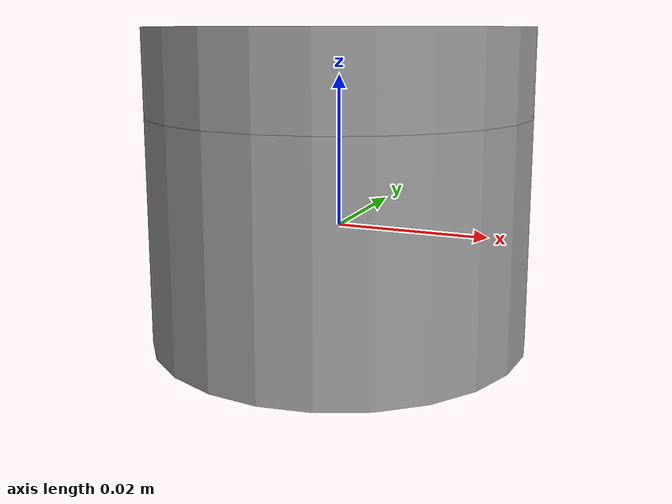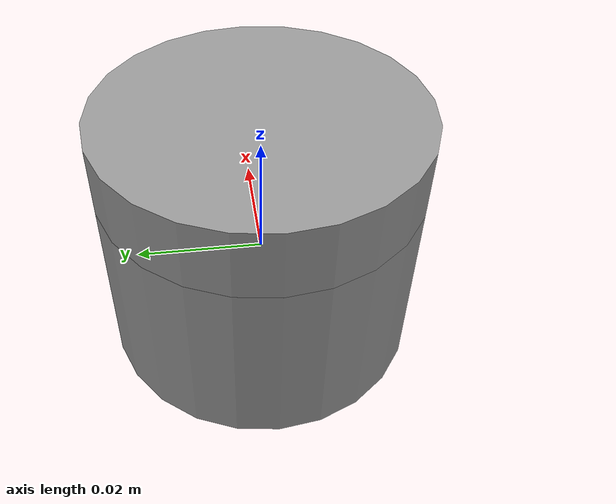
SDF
<?xml version='1.0'?>
<sdf version='1.6'>
  <model name='round_bottle'>
    <link name='link'>
      <inertial>
        <mass>0.01</mass>
        <inertia>
          <ixx>0.145833</ixx>
          <ixy>0</ixy>
          <ixz>0</ixz>
          <iyy>0.145833</iyy>
          <iyz>0</iyz>
          <izz>0.125</izz>
        </inertia>
        <pose frame=''>0 0 0 0 -0 0</pose>
      </inertial>
      <self_collide>0</self_collide>
      <enable_wind>0</enable_wind>
      <kinematic>0</kinematic>
      <pose frame=''>0 0 0 0 -0 0</pose>
      <gravity>1</gravity>
      <visual name='visual'>
        <geometry>
          <cylinder>
            <radius>0.025</radius>
            <length>0.03</length>
          </cylinder>
        </geometry>
        <material>
          <script>
            <name>Gazebo/Grey</name>
            <uri>file://media/materials/scripts/gazebo.material</uri>
          </script>
          <shader type='vertex'>
            <normal_map>__default__</normal_map>
          </shader>
          <ambient>0.1 0.1 0.1 0.1</ambient>
          <diffuse>0.1 0.1 0.1 0.1</diffuse>
          <specular>0.1 0.1 0.1 0.1</specular>
          <emissive>0.1 0.1 0.1 0.1</emissive>
        </material>
        <pose frame=''>0 0 0 0 -0 0</pose>
        <transparency>0</transparency>
        <cast_shadows>1</cast_shadows>
      </visual>
      <collision name='collision'>
        <laser_retro>0</laser_retro>
        <max_contacts>10</max_contacts>
        <pose frame=''>0 0 0 0 -0 0</pose>
        <geometry>
          <cylinder>
            <radius>0.025</radius>
            <length>0.03</length>
          </cylinder>
        </geometry>
        <surface>
          <friction>
            <ode>
              <mu>1</mu>
              <mu2>1</mu2>
              <fdir1>0 0 0</fdir1>
              <slip1>0</slip1>
              <slip2>0</slip2>
            </ode>
            <torsional>
              <coefficient>1</coefficient>
              <patch_radius>0</patch_radius>
              <surface_radius>0</surface_radius>
              <use_patch_radius>1</use_patch_radius>
              <ode>
                <slip>0</slip>
              </ode>
            </torsional>
          </friction>
          <bounce>
            <restitution_coefficient>0</restitution_coefficient>
            <threshold>1e+06</threshold>
          </bounce>
          <contact>
            <collide_without_contact>0</collide_without_contact>
            <collide_without_contact_bitmask>1</collide_without_contact_bitmask>
            <collide_bitmask>1</collide_bitmask>
            <ode>
              <soft_cfm>0</soft_cfm>
              <soft_erp>0.2</soft_erp>
              <kp>1e+13</kp>
              <kd>1</kd>
              <max_vel>0.01</max_vel>
              <min_depth>0</min_depth>
            </ode>
            <bullet>
              <split_impulse>1</split_impulse>
              <split_impulse_penetration_threshold>-0.01</split_impulse_penetration_threshold>
              <soft_cfm>0</soft_cfm>
              <soft_erp>0.2</soft_erp>
              <kp>1e+13</kp>
              <kd>1</kd>
            </bullet>
          </contact>
        </surface>
      </collision>
    </link>
    <link name='link_clone'>
      <inertial>
        <mass>0.01</mass>
        <inertia>
          <ixx>0.145833</ixx>
          <ixy>0</ixy>
          <ixz>0</ixz>
          <iyy>0.145833</iyy>
          <iyz>0</iyz>
          <izz>0.125</izz>
        </inertia>
        <pose frame=''>0 0 0 0 -0 0</pose>
      </inertial>
      <self_collide>0</self_collide>
      <enable_wind>0</enable_wind>
      <kinematic>0</kinematic>
      <pose frame=''>-0 0 0.0205 0 -0 0</pose>
      <gravity>1</gravity>
      <visual name='visual'>
        <geometry>
          <cylinder>
            <radius>0.025</radius>
            <length>0.011</length>
          </cylinder>
        </geometry>
        <material>
          <script>
            <name>Gazebo/Grey</name>
            <uri>file://media/materials/scripts/gazebo.material</uri>
          </script>
          <shader type='vertex'>
            <normal_map>__default__</normal_map>
          </shader>
          <ambient>0 0 0 1</ambient>
          <diffuse>0 0 0 1</diffuse>
          <specular>0 0 0 1</specular>
          <emissive>0 0 0 1</emissive>
        </material>
        <pose frame=''>0 0 0 0 -0 0</pose>
        <transparency>0</transparency>
        <cast_shadows>1</cast_shadows>
      </visual>
      <collision name='collision'>
        <laser_retro>0</laser_retro>
        <max_contacts>10</max_contacts>
        <pose frame=''>0 0 0 0 -0 0</pose>
        <geometry>
          <cylinder>
            <radius>0.025</radius>
            <length>0.011</length>
          </cylinder>
        </geometry>
        <surface>
          <friction>
            <ode>
              <mu>1</mu>
              <mu2>1</mu2>
              <fdir1>0 0 0</fdir1>
              <slip1>0</slip1>
              <slip2>0</slip2>
            </ode>
            <torsional>
              <coefficient>1</coefficient>
              <patch_radius>0</patch_radius>
              <surface_radius>0</surface_radius>
              <use_patch_radius>1</use_patch_radius>
              <ode>
                <slip>0</slip>
              </ode>
            </torsional>
          </friction>
          <bounce>
            <restitution_coefficient>0</restitution_coefficient>
            <threshold>1e+06</threshold>
          </bounce>
          <contact>
            <collide_without_contact>0</collide_without_contact>
            <collide_without_contact_bitmask>1</collide_without_contact_bitmask>
            <collide_bitmask>1</collide_bitmask>
            <ode>
              <soft_cfm>0</soft_cfm>
              <soft_erp>0.2</soft_erp>
              <kp>1e+13</kp>
              <kd>1</kd>
              <max_vel>0.01</max_vel>
              <min_depth>0</min_depth>
            </ode>
            <bullet>
              <split_impulse>1</split_impulse>
              <split_impulse_penetration_threshold>-0.01</split_impulse_penetration_threshold>
              <soft_cfm>0</soft_cfm>
              <soft_erp>0.2</soft_erp>
              <kp>1e+13</kp>
              <kd>1</kd>
            </bullet>
          </contact>
        </surface>
      </collision>
    </link>
    <joint name='link_JOINT_0' type='fixed'>
      <parent>link</parent>
      <child>link_clone</child>
      <pose frame=''>0 0 0 0 -0 0</pose>
      <physics>
        <ode>
          <limit>
            <cfm>0</cfm>
            <erp>0.2</erp>
          </limit>
          <suspension>
            <cfm>0</cfm>
            <erp>0.2</erp>
          </suspension>
        </ode>
      </physics>
    </joint>
    <static>0</static>
    <allow_auto_disable>1</allow_auto_disable>
  </model>
</sdf>
